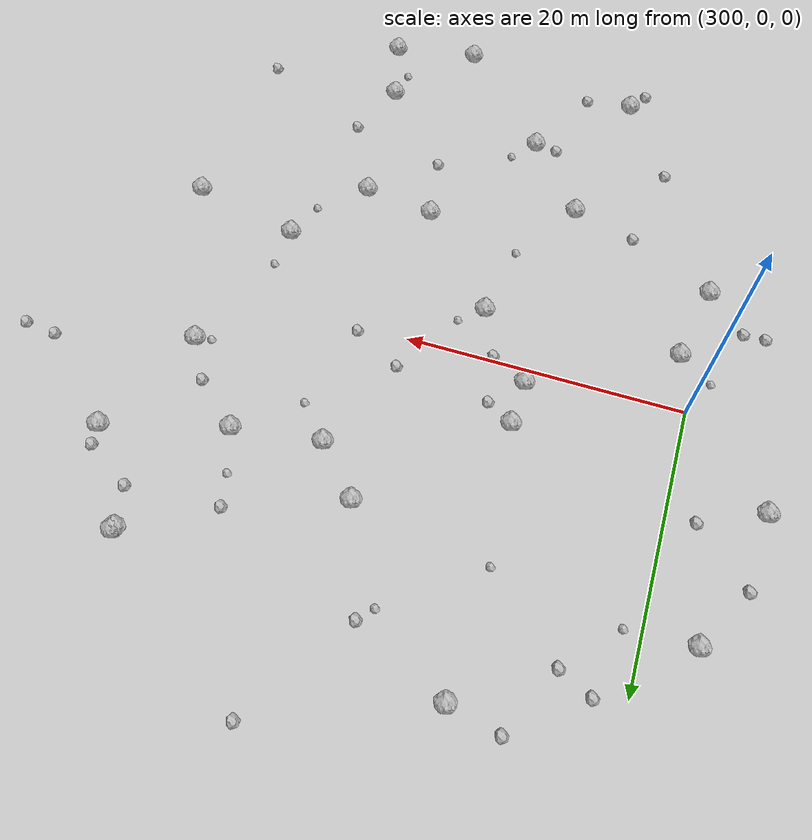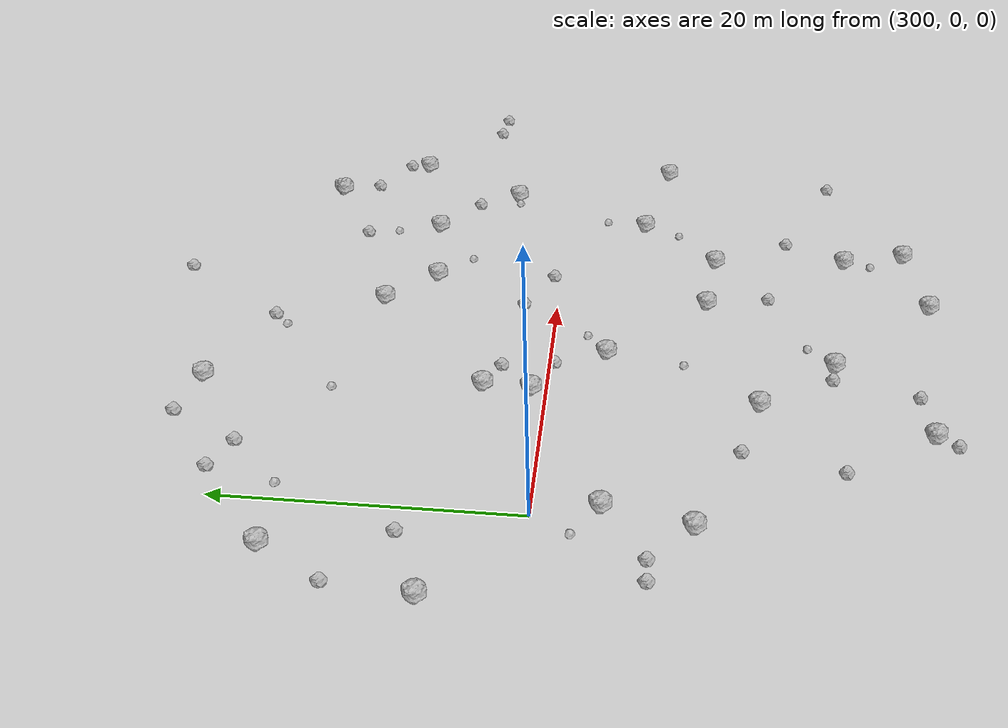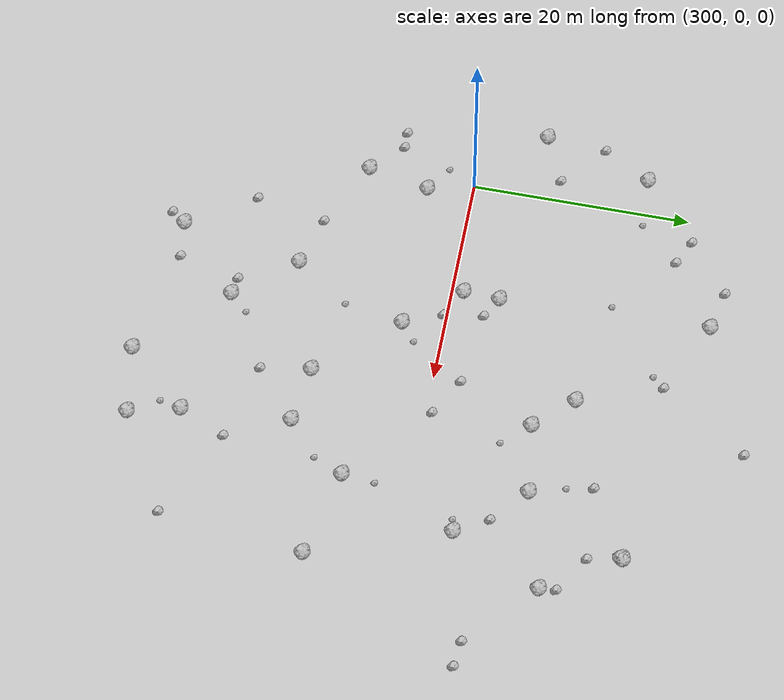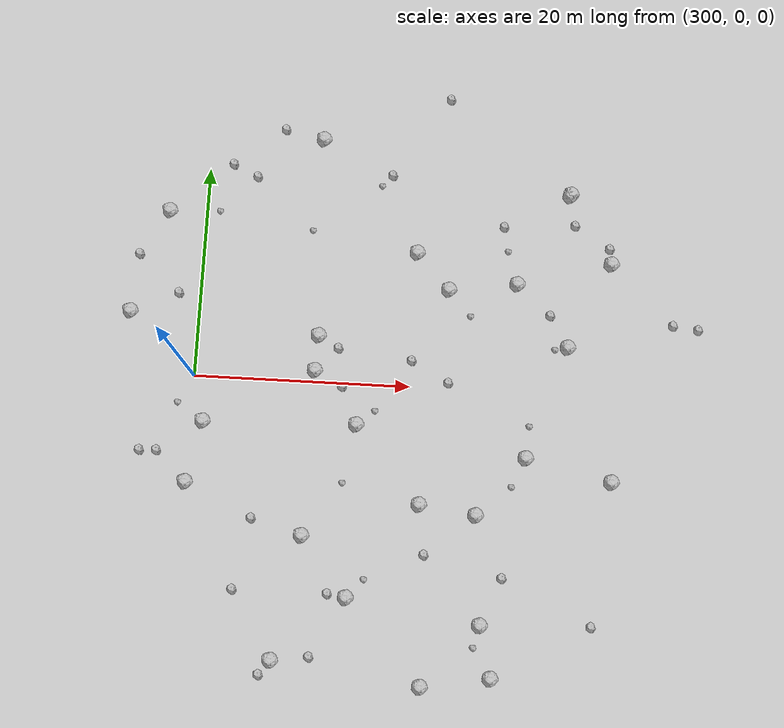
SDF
<sdf version="1.6">
 <world name="default">
  <include><uri>model://sun</uri></include>
  <model name="rock1_8_2">
   <include><uri>model://rock1</uri><pose>328.51618648408555 -25.970927691619874 0.5 0 0 0</pose></include>
  </model>
  <model name="rock1_8_3">
   <include><uri>model://rock1</uri><pose>334.41847393713056 4.417903542972795 0.5 0 0 0</pose></include>
  </model>
  <model name="rock1_8_4">
   <include><uri>model://rock1</uri><pose>310.6133602177924 23.447122445056657 0.5 0 0 0</pose></include>
  </model>
  <model name="rock1_8_5">
   <include><uri>model://rock1</uri><pose>310.94142961168774 -14.201039869109708 0.5 0 0 0</pose></include>
  </model>
  <model name="rock1_8_6">
   <include><uri>model://rock1</uri><pose>293.6696732880304 5.780895595834089 0.5 0 0 0</pose></include>
  </model>
  <model name="rock1_8_7">
   <include><uri>model://rock1</uri><pose>296.54789699511355 15.652091393448977 0.5 0 0 0</pose></include>
  </model>
  <model name="rock1_8_8">
   <include><uri>model://rock1</uri><pose>334.2635452697752 19.221865052421883 0.5 0 0 0</pose></include>
  </model>
  <model name="rock1_8_9">
   <include><uri>model://rock1</uri><pose>338.2486399856694 12.595237467749882 0.5 0 0 0</pose></include>
  </model>
  <model name="rock1_8_10">
   <include><uri>model://rock1</uri><pose>301.19602813219956 -4.2140732709697275 0.5 0 0 0</pose></include>
  </model>
  <model name="rock1_8_11">
   <include><uri>model://rock1</uri><pose>308.9103868494463 -25.385160037683494 0.5 0 0 0</pose></include>
  </model>
  <model name="rock1_8_12">
   <include><uri>model://rock1</uri><pose>315.28663894348483 -3.8219065045233904 0.5 0 0 0</pose></include>
  </model>
  <model name="rock1_8_13">
   <include><uri>model://rock1</uri><pose>323.1750154644141 9.353361579458962 0.5 0 0 0</pose></include>
  </model>
  <model name="rock1_8_14">
   <include><uri>model://rock1</uri><pose>327.37547232864557 -21.374941494117746 0.5 0 0 0</pose></include>
  </model>
  <model name="rock1_8_15">
   <include><uri>model://rock1</uri><pose>326.5899530967654 -11.55689346154929 0.5 0 0 0</pose></include>
  </model>
  <model name="rock1_8_16">
   <include><uri>model://rock1</uri><pose>338.7858434627393 -7.908764099880223 0.5 0 0 0</pose></include>
  </model>
  <model name="rock1_8_17">
   <include><uri>model://rock1</uri><pose>300.0389602483641 -9.875071409662596 0.5 0 0 0</pose></include>
  </model>
  <model name="rock1_8_18">
   <include><uri>model://rock1</uri><pose>315.2731858245744 -19.541143819708573 0.5 0 0 0</pose></include>
  </model>
  <model name="rock1_8_19">
   <include><uri>model://rock1</uri><pose>311.174384982313 1.0461215797357966 0.5 0 0 0</pose></include>
  </model>
  <model name="rock1_8_20">
   <include><uri>model://rock1</uri><pose>321.40564859444737 -10.849888659417005 0.5 0 0 0</pose></include>
  </model>
  <model name="rock1_8_21">
   <include><uri>model://rock1</uri><pose>334.18765171165813 19.06635728253157 0.5 0 0 0</pose></include>
  </model>
  <model name="rock1_8_22">
   <include><uri>model://rock1</uri><pose>322.3108158784147 -27.015328561681137 0.5 0 0 0</pose></include>
  </model>
  <model name="rock1_8_23">
   <include><uri>model://rock1</uri><pose>329.5202782404354 10.214927433353466 0.5 0 0 0</pose></include>
  </model>
  <model name="rock1_8_24">
   <include><uri>model://rock1</uri><pose>320.0528941321985 12.76934401627559 0.5 0 0 0</pose></include>
  </model>
  <model name="rock1_8_25">
   <include><uri>model://rock1</uri><pose>330.92453750284864 -6.105536855231652 0.5 0 0 0</pose></include>
  </model>
  <model name="rock1_8_26">
   <include><uri>model://rock1</uri><pose>311.31789787933616 4.3536063132034855 0.5 0 0 0</pose></include>
  </model>
  <model name="rock2_8_0">
   <include><uri>model://rock2</uri><pose>334.7347514430512 16.208349691215595 0.3 0 0 0</pose></include>
  </model>
  <model name="rock2_8_1">
   <include><uri>model://rock2</uri><pose>323.5173482840092 0.5324586046428408 0.3 0 0 0</pose></include>
  </model>
  <model name="rock2_8_2">
   <include><uri>model://rock2</uri><pose>313.7455676747094 -0.30539723918994355 0.3 0 0 0</pose></include>
  </model>
  <model name="rock2_8_3">
   <include><uri>model://rock2</uri><pose>312.28810343253684 -24.93057872374693 0.3 0 0 0</pose></include>
  </model>
  <model name="rock2_8_4">
   <include><uri>model://rock2</uri><pose>338.0471574988151 14.110385557980848 0.3 0 0 0</pose></include>
  </model>
  <model name="rock2_8_5">
   <include><uri>model://rock2</uri><pose>297.13777339261446 -7.107430614632381 0.3 0 0 0</pose></include>
  </model>
  <model name="rock2_8_6">
   <include><uri>model://rock2</uri><pose>305.0033118915431 -19.321912267047114 0.3 0 0 0</pose></include>
  </model>
  <model name="rock2_8_7">
   <include><uri>model://rock2</uri><pose>317.3165266631838 20.274086317047377 0.3 0 0 0</pose></include>
  </model>
  <model name="rock2_8_8">
   <include><uri>model://rock2</uri><pose>304.53779805110884 19.479131818756137 0.3 0 0 0</pose></include>
  </model>
  <model name="rock2_8_9">
   <include><uri>model://rock2</uri><pose>294.01682534126724 11.347275026689424 0.3 0 0 0</pose></include>
  </model>
  <model name="rock2_8_10">
   <include><uri>model://rock2</uri><pose>344.1202701998248 7.021015318960565 0.3 0 0 0</pose></include>
  </model>
  <model name="rock2_8_11">
   <include><uri>model://rock2</uri><pose>307.90300800468026 -26.70013121493629 0.3 0 0 0</pose></include>
  </model>
  <model name="rock2_8_12">
   <include><uri>model://rock2</uri><pose>295.5619966656835 -7.149833560840637 0.3 0 0 0</pose></include>
  </model>
  <model name="rock2_8_13">
   <include><uri>model://rock2</uri><pose>306.8963038726873 24.3106856813992 0.3 0 0 0</pose></include>
  </model>
  <model name="rock2_8_14">
   <include><uri>model://rock2</uri><pose>298.00202915829016 7.785500990885531 0.3 0 0 0</pose></include>
  </model>
  <model name="rock2_8_15">
   <include><uri>model://rock2</uri><pose>337.31105524055334 -21.006234738904368 0.3 0 0 0</pose></include>
  </model>
  <model name="rock2_8_16">
   <include><uri>model://rock2</uri><pose>313.19846252575655 3.2791373367222505 0.3 0 0 0</pose></include>
  </model>
  <model name="rock2_8_17">
   <include><uri>model://rock2</uri><pose>322.4809730371484 28.161102697984802 0.3 0 0 0</pose></include>
  </model>
  <model name="rock2_8_18">
   <include><uri>model://rock2</uri><pose>313.57698677539554 -19.284786929150968 0.3 0 0 0</pose></include>
  </model>
  <model name="rock2_8_19">
   <include><uri>model://rock2</uri><pose>322.0579659421997 -15.355478391509275 0.3 0 0 0</pose></include>
  </model>
  <model name="rock2_8_20">
   <include><uri>model://rock2</uri><pose>329.17144180976914 -17.095714291512166 0.3 0 0 0</pose></include>
  </model>
  <model name="rock2_8_21">
   <include><uri>model://rock2</uri><pose>332.69398571654375 7.407833864788763 0.3 0 0 0</pose></include>
  </model>
  <model name="rock2_8_22">
   <include><uri>model://rock2</uri><pose>328.07556807840825 15.754974792913401 0.3 0 0 0</pose></include>
  </model>
  <model name="rock2_8_23">
   <include><uri>model://rock2</uri><pose>346.4552749232047 6.742481436108598 0.3 0 0 0</pose></include>
  </model>
  <model name="rock2_8_24">
   <include><uri>model://rock2</uri><pose>320.0414488986222 2.4616858992070547 0.3 0 0 0</pose></include>
  </model>
  <model name="rock2_8_25">
   <include><uri>model://rock2</uri><pose>306.24540466047114 -12.853911468244185 0.3 0 0 0</pose></include>
  </model>
  <model name="rock2_8_26">
   <include><uri>model://rock2</uri><pose>302.18338789011784 20.6077546144993 0.3 0 0 0</pose></include>
  </model>
  <model name="rock3_8_0">
   <include><uri>model://rock3</uri><pose>329.70148199769193 -8.818494791124788 0.2 0 0 0</pose></include>
  </model>
  <model name="rock3_8_1">
   <include><uri>model://rock3</uri><pose>316.76152756658837 -17.857114356045937 0.2 0 0 0</pose></include>
  </model>
  <model name="rock3_8_2">
   <include><uri>model://rock3</uri><pose>328.5295420042388 13.362635456648391 0.2 0 0 0</pose></include>
  </model>
  <model name="rock3_8_3">
   <include><uri>model://rock3</uri><pose>301.1995284680245 15.896375018357745 0.2 0 0 0</pose></include>
  </model>
  <model name="rock3_8_4">
   <include><uri>model://rock3</uri><pose>298.69172573242975 -2.5795166848931075 0.2 0 0 0</pose></include>
  </model>
  <model name="rock3_8_5">
   <include><uri>model://rock3</uri><pose>310.0910234055956 14.462466560192652 0.2 0 0 0</pose></include>
  </model>
  <model name="rock3_8_6">
   <include><uri>model://rock3</uri><pose>316.88954242081013 -2.448880811632222 0.2 0 0 0</pose></include>
  </model>
  <model name="rock3_8_7">
   <include><uri>model://rock3</uri><pose>331.1231692703997 -3.1476556489688434 0.2 0 0 0</pose></include>
  </model>
  <model name="rock3_8_8">
   <include><uri>model://rock3</uri><pose>325.27515171149855 6.936891948799165 0.2 0 0 0</pose></include>
  </model>
  <model name="rock3_8_9">
   <include><uri>model://rock3</uri><pose>316.3637654986653 19.173178878417836 0.2 0 0 0</pose></include>
  </model>
  <model name="rock3_8_10">
   <include><uri>model://rock3</uri><pose>314.28436611128484 -9.238419415806714 0.2 0 0 0</pose></include>
  </model>
  <model name="rock3_8_11">
   <include><uri>model://rock3</uri><pose>333.228275370947 4.174950463153223 0.2 0 0 0</pose></include>
  </model>
  <model name="rock3_8_12">
   <include><uri>model://rock3</uri><pose>326.8490733700339 -23.382108650775365 0.2 0 0 0</pose></include>
  </model>
 </world>
</sdf>
